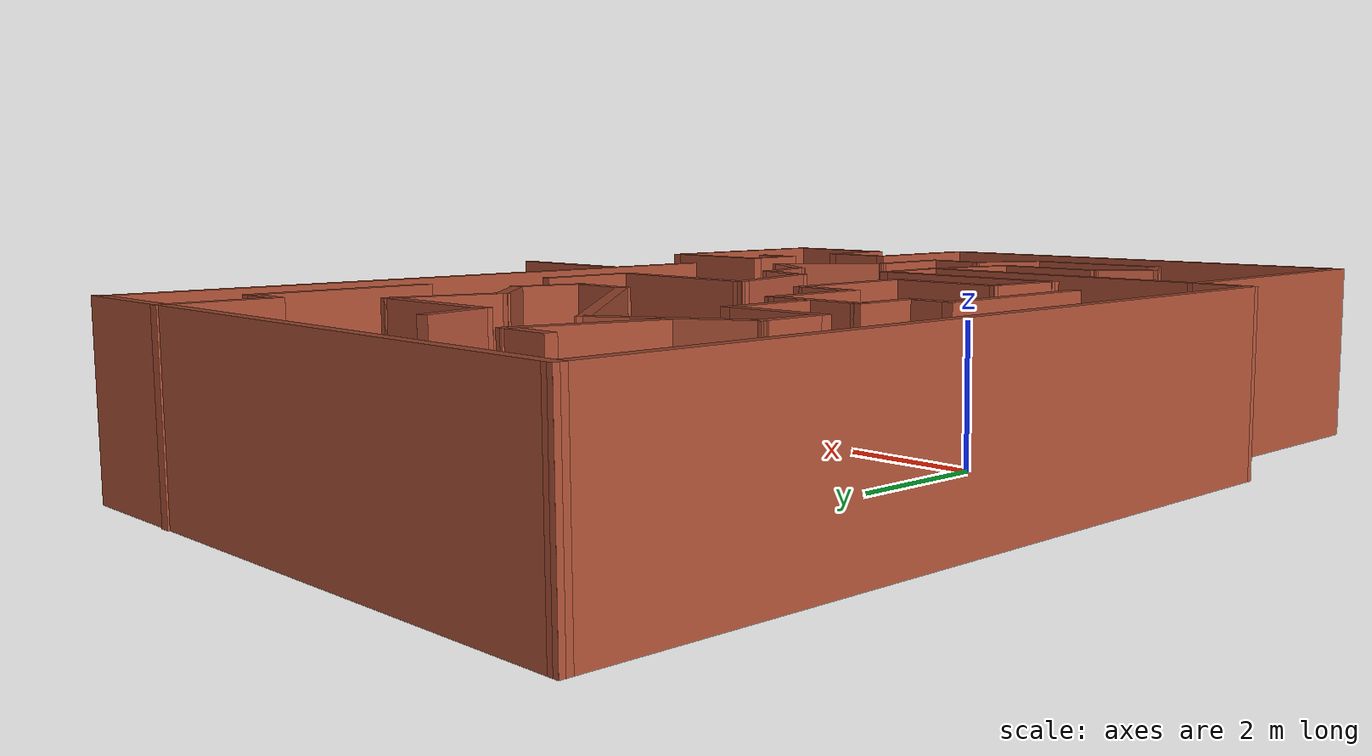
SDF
<?xml version='1.0'?>
<sdf version='1.7'>
  <model name='Search'>
    <pose>2.54923 1.35424 0 0 -0 0</pose>
    <link name='Wall_0'>
      <collision name='Wall_0_Collision'>
        <geometry>
          <box>
            <size>4.25 0.15 2.5</size>
          </box>
        </geometry>
        <pose>0 0 1.25 0 -0 0</pose>
      </collision>
      <visual name='Wall_0_Visual'>
        <pose>0 0 1.25 0 -0 0</pose>
        <geometry>
          <box>
            <size>4.25 0.15 2.5</size>
          </box>
        </geometry>
        <material>
          <script>
            <uri>file://media/materials/scripts/gazebo.material</uri>
            <name>Gazebo/Bricks</name>
          </script>
          <ambient>1 1 1 1</ambient>
        </material>
        <meta>
          <layer>0</layer>
        </meta>
      </visual>
      <pose>-4.64822 -5.4632 0 0 -0 -1.5708</pose>
    </link>
    <link name='Wall_11'>
      <collision name='Wall_11_Collision'>
        <geometry>
          <box>
            <size>2.25 0.15 2.5</size>
          </box>
        </geometry>
        <pose>0 0 1.25 0 -0 0</pose>
      </collision>
      <visual name='Wall_11_Visual'>
        <pose>0 0 1.25 0 -0 0</pose>
        <geometry>
          <box>
            <size>2.25 0.15 2.5</size>
          </box>
        </geometry>
        <material>
          <script>
            <uri>file://media/materials/scripts/gazebo.material</uri>
            <name>Gazebo/Bricks</name>
          </script>
          <ambient>1 1 1 1</ambient>
        </material>
        <meta>
          <layer>0</layer>
        </meta>
      </visual>
      <pose>2.4822 -6.4632 0 0 -0 1.5708</pose>
    </link>
    <link name='Wall_12'>
      <collision name='Wall_12_Collision'>
        <geometry>
          <box>
            <size>1.25 0.15 2.5</size>
          </box>
        </geometry>
        <pose>0 0 1.25 0 -0 0</pose>
      </collision>
      <visual name='Wall_12_Visual'>
        <pose>0 0 1.25 0 -0 0</pose>
        <geometry>
          <box>
            <size>1.25 0.15 2.5</size>
          </box>
        </geometry>
        <material>
          <script>
            <uri>file://media/materials/scripts/gazebo.material</uri>
            <name>Gazebo/Bricks</name>
          </script>
          <ambient>1 1 1 1</ambient>
        </material>
        <meta>
          <layer>0</layer>
        </meta>
      </visual>
      <pose>3.0322 -5.4132 0 0 -0 0</pose>
    </link>
    <link name='Wall_13'>
      <collision name='Wall_13_Collision'>
        <geometry>
          <box>
            <size>1.25 0.15 2.5</size>
          </box>
        </geometry>
        <pose>0 0 1.25 0 -0 0</pose>
      </collision>
      <visual name='Wall_13_Visual'>
        <pose>0 0 1.25 0 -0 0</pose>
        <geometry>
          <box>
            <size>1.25 0.15 2.5</size>
          </box>
        </geometry>
        <material>
          <script>
            <uri>file://media/materials/scripts/gazebo.material</uri>
            <name>Gazebo/Bricks</name>
          </script>
          <ambient>1 1 1 1</ambient>
        </material>
        <meta>
          <layer>0</layer>
        </meta>
      </visual>
      <pose>3.5822 -5.9632 0 0 -0 -1.5708</pose>
    </link>
    <link name='Wall_14'>
      <collision name='Wall_14_Collision'>
        <geometry>
          <box>
            <size>2 0.15 2.5</size>
          </box>
        </geometry>
        <pose>0 0 1.25 0 -0 0</pose>
      </collision>
      <visual name='Wall_14_Visual'>
        <pose>0 0 1.25 0 -0 0</pose>
        <geometry>
          <box>
            <size>2 0.15 2.5</size>
          </box>
        </geometry>
        <material>
          <script>
            <uri>file://media/materials/scripts/gazebo.material</uri>
            <name>Gazebo/Bricks</name>
          </script>
          <ambient>1 1 1 1</ambient>
        </material>
        <meta>
          <layer>0</layer>
        </meta>
      </visual>
      <pose>4.5072 -6.5132 0 0 -0 0</pose>
    </link>
    <link name='Wall_15'>
      <collision name='Wall_15_Collision'>
        <geometry>
          <box>
            <size>3.25 0.15 2.5</size>
          </box>
        </geometry>
        <pose>0 0 1.25 0 -0 0</pose>
      </collision>
      <visual name='Wall_15_Visual'>
        <pose>0 0 1.25 0 -0 0</pose>
        <geometry>
          <box>
            <size>3.25 0.15 2.5</size>
          </box>
        </geometry>
        <material>
          <script>
            <uri>file://media/materials/scripts/gazebo.material</uri>
            <name>Gazebo/Bricks</name>
          </script>
          <ambient>1 1 1 1</ambient>
        </material>
        <meta>
          <layer>0</layer>
        </meta>
      </visual>
      <pose>5.4322 -4.9632 0 0 -0 1.5708</pose>
    </link>
    <link name='Wall_16'>
      <collision name='Wall_16_Collision'>
        <geometry>
          <box>
            <size>2 0.15 2.5</size>
          </box>
        </geometry>
        <pose>0 0 1.25 0 -0 0</pose>
      </collision>
      <visual name='Wall_16_Visual'>
        <pose>0 0 1.25 0 -0 0</pose>
        <geometry>
          <box>
            <size>2 0.15 2.5</size>
          </box>
        </geometry>
        <material>
          <script>
            <uri>file://media/materials/scripts/gazebo.material</uri>
            <name>Gazebo/Bricks</name>
          </script>
          <ambient>1 1 1 1</ambient>
        </material>
        <meta>
          <layer>0</layer>
        </meta>
      </visual>
      <pose>4.5072 -3.4132 0 0 -0 3.14159</pose>
    </link>
    <link name='Wall_17'>
      <collision name='Wall_17_Collision'>
        <geometry>
          <box>
            <size>1 0.15 2.5</size>
          </box>
        </geometry>
        <pose>0 0 1.25 0 -0 0</pose>
      </collision>
      <visual name='Wall_17_Visual'>
        <pose>0 0 1.25 0 -0 0</pose>
        <geometry>
          <box>
            <size>1 0.15 2.5</size>
          </box>
        </geometry>
        <material>
          <script>
            <uri>file://media/materials/scripts/gazebo.material</uri>
            <name>Gazebo/Bricks</name>
          </script>
          <ambient>1 1 1 1</ambient>
        </material>
        <meta>
          <layer>0</layer>
        </meta>
      </visual>
      <pose>3.5822 -3.8382 0 0 -0 -1.5708</pose>
    </link>
    <link name='Wall_18'>
      <collision name='Wall_18_Collision'>
        <geometry>
          <box>
            <size>0.75 0.15 2.5</size>
          </box>
        </geometry>
        <pose>0 0 1.25 0 -0 0</pose>
      </collision>
      <visual name='Wall_18_Visual'>
        <pose>0 0 1.25 0 -0 0</pose>
        <geometry>
          <box>
            <size>0.75 0.15 2.5</size>
          </box>
        </geometry>
        <material>
          <script>
            <uri>file://media/materials/scripts/gazebo.material</uri>
            <name>Gazebo/Bricks</name>
          </script>
          <ambient>1 1 1 1</ambient>
        </material>
        <meta>
          <layer>0</layer>
        </meta>
      </visual>
      <pose>3.8822 -4.2632 0 0 -0 0</pose>
    </link>
    <link name='Wall_23'>
      <collision name='Wall_23_Collision'>
        <geometry>
          <box>
            <size>9.28615 0.15 2.5</size>
          </box>
        </geometry>
        <pose>0 0 1.25 0 -0 0</pose>
      </collision>
      <visual name='Wall_23_Visual'>
        <pose>0 0 1.25 0 -0 0</pose>
        <geometry>
          <box>
            <size>9.28615 0.15 2.5</size>
          </box>
        </geometry>
        <material>
          <script>
            <uri>file://media/materials/scripts/gazebo.material</uri>
            <name>Gazebo/Bricks</name>
          </script>
          <ambient>1 1 1 1</ambient>
        </material>
        <meta>
          <layer>0</layer>
        </meta>
      </visual>
      <pose>3.35084 2.83731 0 0 -0 1.56494</pose>
    </link>
    <link name='Wall_24'>
      <collision name='Wall_24_Collision'>
        <geometry>
          <box>
            <size>9.03663 0.15 2.5</size>
          </box>
        </geometry>
        <pose>0 0 1.25 0 -0 0</pose>
      </collision>
      <visual name='Wall_24_Visual'>
        <pose>0 0 1.25 0 -0 0</pose>
        <geometry>
          <box>
            <size>9.03663 0.15 2.5</size>
          </box>
        </geometry>
        <material>
          <script>
            <uri>file://media/materials/scripts/gazebo.material</uri>
            <name>Gazebo/Bricks</name>
          </script>
          <ambient>1 1 1 1</ambient>
        </material>
        <meta>
          <layer>0</layer>
        </meta>
      </visual>
      <pose>-1.0119 7.4588 0 0 -0 3.12955</pose>
    </link>
    <link name='Wall_25'>
      <collision name='Wall_25_Collision'>
        <geometry>
          <box>
            <size>11 0.15 2.5</size>
          </box>
        </geometry>
        <pose>0 0 1.25 0 -0 0</pose>
      </collision>
      <visual name='Wall_25_Visual'>
        <pose>0 0 1.25 0 -0 0</pose>
        <geometry>
          <box>
            <size>11 0.15 2.5</size>
          </box>
        </geometry>
        <material>
          <script>
            <uri>file://media/materials/scripts/gazebo.material</uri>
            <name>Gazebo/Bricks</name>
          </script>
          <ambient>1 1 1 1</ambient>
        </material>
        <meta>
          <layer>0</layer>
        </meta>
      </visual>
      <pose>-5.45489 2.08731 0 0 -0 -1.5708</pose>
    </link>
    <link name='Wall_26'>
      <collision name='Wall_26_Collision'>
        <geometry>
          <box>
            <size>0.960202 0.15 2.5</size>
          </box>
        </geometry>
        <pose>0 0 1.25 0 -0 0</pose>
      </collision>
      <visual name='Wall_26_Visual'>
        <pose>0 0 1.25 0 -0 0</pose>
        <geometry>
          <box>
            <size>0.960202 0.15 2.5</size>
          </box>
        </geometry>
        <material>
          <script>
            <uri>file://media/materials/scripts/gazebo.material</uri>
            <name>Gazebo/Bricks</name>
          </script>
          <ambient>1 1 1 1</ambient>
        </material>
        <meta>
          <layer>0</layer>
        </meta>
      </visual>
      <pose>-5.05155 -3.37545 0 0 -0 -0.093331</pose>
    </link>
    <link name='Wall_28'>
      <collision name='Wall_28_Collision'>
        <geometry>
          <box>
            <size>2.25 0.15 2.5</size>
          </box>
        </geometry>
        <pose>0 0 1.25 0 -0 0</pose>
      </collision>
      <visual name='Wall_28_Visual'>
        <pose>0 0 1.25 0 -0 0</pose>
        <geometry>
          <box>
            <size>2.25 0.15 2.5</size>
          </box>
        </geometry>
        <material>
          <script>
            <uri>file://media/materials/scripts/gazebo.material</uri>
            <name>Gazebo/Bricks</name>
          </script>
          <ambient>1 1 1 1</ambient>
        </material>
        <meta>
          <layer>0</layer>
        </meta>
      </visual>
      <pose>4.41155 -0.253683 0 0 -0 0</pose>
    </link>
    <link name='Wall_30'>
      <collision name='Wall_30_Collision'>
        <geometry>
          <box>
            <size>2.5 0.15 2.5</size>
          </box>
        </geometry>
        <pose>0 0 1.25 0 -0 0</pose>
      </collision>
      <visual name='Wall_30_Visual'>
        <pose>0 0 1.25 0 -0 0</pose>
        <geometry>
          <box>
            <size>2.5 0.15 2.5</size>
          </box>
        </geometry>
        <material>
          <script>
            <uri>file://media/materials/scripts/gazebo.material</uri>
            <name>Gazebo/Bricks</name>
          </script>
          <ambient>1 1 1 1</ambient>
        </material>
        <meta>
          <layer>0</layer>
        </meta>
      </visual>
      <pose>-4.2358 -0.041728 0 0 -0 1.5708</pose>
    </link>
    <link name='Wall_31'>
      <collision name='Wall_31_Collision'>
        <geometry>
          <box>
            <size>0.75 0.15 2.5</size>
          </box>
        </geometry>
        <pose>0 0 1.25 0 -0 0</pose>
      </collision>
      <visual name='Wall_31_Visual'>
        <pose>0 0 1.25 0 -0 0</pose>
        <geometry>
          <box>
            <size>0.75 0.15 2.5</size>
          </box>
        </geometry>
        <material>
          <script>
            <uri>file://media/materials/scripts/gazebo.material</uri>
            <name>Gazebo/Bricks</name>
          </script>
          <ambient>1 1 1 1</ambient>
        </material>
        <meta>
          <layer>0</layer>
        </meta>
      </visual>
      <pose>-3.9358 1.13327 0 0 -0 0</pose>
    </link>
    <link name='Wall_32'>
      <collision name='Wall_32_Collision'>
        <geometry>
          <box>
            <size>1 0.15 2.5</size>
          </box>
        </geometry>
        <pose>0 0 1.25 0 -0 0</pose>
      </collision>
      <visual name='Wall_32_Visual'>
        <pose>0 0 1.25 0 -0 0</pose>
        <geometry>
          <box>
            <size>1 0.15 2.5</size>
          </box>
        </geometry>
        <material>
          <script>
            <uri>file://media/materials/scripts/gazebo.material</uri>
            <name>Gazebo/Bricks</name>
          </script>
          <ambient>1 1 1 1</ambient>
        </material>
        <meta>
          <layer>0</layer>
        </meta>
      </visual>
      <pose>-3.6358 1.55827 0 0 -0 1.5708</pose>
    </link>
    <link name='Wall_33'>
      <collision name='Wall_33_Collision'>
        <geometry>
          <box>
            <size>1.5 0.15 2.5</size>
          </box>
        </geometry>
        <pose>0 0 1.25 0 -0 0</pose>
      </collision>
      <visual name='Wall_33_Visual'>
        <pose>0 0 1.25 0 -0 0</pose>
        <geometry>
          <box>
            <size>1.5 0.15 2.5</size>
          </box>
        </geometry>
        <material>
          <script>
            <uri>file://media/materials/scripts/gazebo.material</uri>
            <name>Gazebo/Bricks</name>
          </script>
          <ambient>1 1 1 1</ambient>
        </material>
        <meta>
          <layer>0</layer>
        </meta>
      </visual>
      <pose>-2.9608 1.98327 0 0 -0 0</pose>
    </link>
    <link name='Wall_34'>
      <collision name='Wall_34_Collision'>
        <geometry>
          <box>
            <size>1.5 0.15 2.5</size>
          </box>
        </geometry>
        <pose>0 0 1.25 0 -0 0</pose>
      </collision>
      <visual name='Wall_34_Visual'>
        <pose>0 0 1.25 0 -0 0</pose>
        <geometry>
          <box>
            <size>1.5 0.15 2.5</size>
          </box>
        </geometry>
        <material>
          <script>
            <uri>file://media/materials/scripts/gazebo.material</uri>
            <name>Gazebo/Bricks</name>
          </script>
          <ambient>1 1 1 1</ambient>
        </material>
        <meta>
          <layer>0</layer>
        </meta>
      </visual>
      <pose>-2.2858 1.30827 0 0 -0 -1.5708</pose>
    </link>
    <link name='Wall_35'>
      <collision name='Wall_35_Collision'>
        <geometry>
          <box>
            <size>1 0.15 2.5</size>
          </box>
        </geometry>
        <pose>0 0 1.25 0 -0 0</pose>
      </collision>
      <visual name='Wall_35_Visual'>
        <pose>0 0 1.25 0 -0 0</pose>
        <geometry>
          <box>
            <size>1 0.15 2.5</size>
          </box>
        </geometry>
        <material>
          <script>
            <uri>file://media/materials/scripts/gazebo.material</uri>
            <name>Gazebo/Bricks</name>
          </script>
          <ambient>1 1 1 1</ambient>
        </material>
        <meta>
          <layer>0</layer>
        </meta>
      </visual>
      <pose>-1.8608 0.633272 0 0 -0 0</pose>
    </link>
    <link name='Wall_36'>
      <collision name='Wall_36_Collision'>
        <geometry>
          <box>
            <size>2 0.15 2.5</size>
          </box>
        </geometry>
        <pose>0 0 1.25 0 -0 0</pose>
      </collision>
      <visual name='Wall_36_Visual'>
        <pose>0 0 1.25 0 -0 0</pose>
        <geometry>
          <box>
            <size>2 0.15 2.5</size>
          </box>
        </geometry>
        <material>
          <script>
            <uri>file://media/materials/scripts/gazebo.material</uri>
            <name>Gazebo/Bricks</name>
          </script>
          <ambient>1 1 1 1</ambient>
        </material>
        <meta>
          <layer>0</layer>
        </meta>
      </visual>
      <pose>-1.4358 -0.291728 0 0 -0 -1.5708</pose>
    </link>
    <link name='Wall_37'>
      <collision name='Wall_37_Collision'>
        <geometry>
          <box>
            <size>1.75 0.15 2.5</size>
          </box>
        </geometry>
        <pose>0 0 1.25 0 -0 0</pose>
      </collision>
      <visual name='Wall_37_Visual'>
        <pose>0 0 1.25 0 -0 0</pose>
        <geometry>
          <box>
            <size>1.75 0.15 2.5</size>
          </box>
        </geometry>
        <material>
          <script>
            <uri>file://media/materials/scripts/gazebo.material</uri>
            <name>Gazebo/Bricks</name>
          </script>
          <ambient>1 1 1 1</ambient>
        </material>
        <meta>
          <layer>0</layer>
        </meta>
      </visual>
      <pose>-2.2358 -1.21673 0 0 -0 3.14159</pose>
    </link>
    <link name='Wall_38'>
      <collision name='Wall_38_Collision'>
        <geometry>
          <box>
            <size>1.25222 0.15 2.5</size>
          </box>
        </geometry>
        <pose>0 0 1.25 0 -0 0</pose>
      </collision>
      <visual name='Wall_38_Visual'>
        <pose>0 0 1.25 0 -0 0</pose>
        <geometry>
          <box>
            <size>1.25222 0.15 2.5</size>
          </box>
        </geometry>
        <material>
          <script>
            <uri>file://media/materials/scripts/gazebo.material</uri>
            <name>Gazebo/Bricks</name>
          </script>
          <ambient>1 1 1 1</ambient>
        </material>
        <meta>
          <layer>0</layer>
        </meta>
      </visual>
      <pose>-3.09201 -1.76496 0 0 -0 -1.67297</pose>
    </link>
    <link name='Wall_4'>
      <collision name='Wall_4_Collision'>
        <geometry>
          <box>
            <size>7.25 0.15 2.5</size>
          </box>
        </geometry>
        <pose>0 0 1.25 0 -0 0</pose>
      </collision>
      <visual name='Wall_4_Visual'>
        <pose>0 0 1.25 0 -0 0</pose>
        <geometry>
          <box>
            <size>7.25 0.15 2.5</size>
          </box>
        </geometry>
        <material>
          <script>
            <uri>file://media/materials/scripts/gazebo.material</uri>
            <name>Gazebo/Bricks</name>
          </script>
          <ambient>1 1 1 1</ambient>
        </material>
        <meta>
          <layer>0</layer>
        </meta>
      </visual>
      <pose>-1.0678 -7.5132 0 0 -0 0</pose>
    </link>
    <link name='Wall_40'>
      <collision name='Wall_40_Collision'>
        <geometry>
          <box>
            <size>1.25 0.15 2.5</size>
          </box>
        </geometry>
        <pose>0 0 1.25 0 -0 0</pose>
      </collision>
      <visual name='Wall_40_Visual'>
        <pose>0 0 1.25 0 -0 0</pose>
        <geometry>
          <box>
            <size>1.25 0.15 2.5</size>
          </box>
        </geometry>
        <material>
          <script>
            <uri>file://media/materials/scripts/gazebo.material</uri>
            <name>Gazebo/Bricks</name>
          </script>
          <ambient>1 1 1 1</ambient>
        </material>
        <meta>
          <layer>0</layer>
        </meta>
      </visual>
      <pose>-2.89824 2.70393 0 0 -0 1.5708</pose>
    </link>
    <link name='Wall_41'>
      <collision name='Wall_41_Collision'>
        <geometry>
          <box>
            <size>1.5 0.15 2.5</size>
          </box>
        </geometry>
        <pose>0 0 1.25 0 -0 0</pose>
      </collision>
      <visual name='Wall_41_Visual'>
        <pose>0 0 1.25 0 -0 0</pose>
        <geometry>
          <box>
            <size>1.5 0.15 2.5</size>
          </box>
        </geometry>
        <material>
          <script>
            <uri>file://media/materials/scripts/gazebo.material</uri>
            <name>Gazebo/Bricks</name>
          </script>
          <ambient>1 1 1 1</ambient>
        </material>
        <meta>
          <layer>0</layer>
        </meta>
      </visual>
      <pose>-3.57324 3.25393 0 0 -0 3.14159</pose>
    </link>
    <link name='Wall_42'>
      <collision name='Wall_42_Collision'>
        <geometry>
          <box>
            <size>1 0.15 2.5</size>
          </box>
        </geometry>
        <pose>0 0 1.25 0 -0 0</pose>
      </collision>
      <visual name='Wall_42_Visual'>
        <pose>0 0 1.25 0 -0 0</pose>
        <geometry>
          <box>
            <size>1 0.15 2.5</size>
          </box>
        </geometry>
        <material>
          <script>
            <uri>file://media/materials/scripts/gazebo.material</uri>
            <name>Gazebo/Bricks</name>
          </script>
          <ambient>1 1 1 1</ambient>
        </material>
        <meta>
          <layer>0</layer>
        </meta>
      </visual>
      <pose>-4.24824 3.67893 0 0 -0 1.5708</pose>
    </link>
    <link name='Wall_43'>
      <collision name='Wall_43_Collision'>
        <geometry>
          <box>
            <size>2 0.15 2.5</size>
          </box>
        </geometry>
        <pose>0 0 1.25 0 -0 0</pose>
      </collision>
      <visual name='Wall_43_Visual'>
        <pose>0 0 1.25 0 -0 0</pose>
        <geometry>
          <box>
            <size>2 0.15 2.5</size>
          </box>
        </geometry>
        <material>
          <script>
            <uri>file://media/materials/scripts/gazebo.material</uri>
            <name>Gazebo/Bricks</name>
          </script>
          <ambient>1 1 1 1</ambient>
        </material>
        <meta>
          <layer>0</layer>
        </meta>
      </visual>
      <pose>-3.44716 4.56643 0 0 -0 0.523599</pose>
    </link>
    <link name='Wall_44'>
      <collision name='Wall_44_Collision'>
        <geometry>
          <box>
            <size>4 0.15 2.5</size>
          </box>
        </geometry>
        <pose>0 0 1.25 0 -0 0</pose>
      </collision>
      <visual name='Wall_44_Visual'>
        <pose>0 0 1.25 0 -0 0</pose>
        <geometry>
          <box>
            <size>4 0.15 2.5</size>
          </box>
        </geometry>
        <material>
          <script>
            <uri>file://media/materials/scripts/gazebo.material</uri>
            <name>Gazebo/Bricks</name>
          </script>
          <ambient>1 1 1 1</ambient>
        </material>
        <meta>
          <layer>0</layer>
        </meta>
      </visual>
      <pose>-1.28491 3.66775 0 0 -0 -0.785398</pose>
    </link>
    <link name='Wall_45'>
      <collision name='Wall_45_Collision'>
        <geometry>
          <box>
            <size>1 0.15 2.5</size>
          </box>
        </geometry>
        <pose>0 0 1.25 0 -0 0</pose>
      </collision>
      <visual name='Wall_45_Visual'>
        <pose>0 0 1.25 0 -0 0</pose>
        <geometry>
          <box>
            <size>1 0.15 2.5</size>
          </box>
        </geometry>
        <material>
          <script>
            <uri>file://media/materials/scripts/gazebo.material</uri>
            <name>Gazebo/Bricks</name>
          </script>
          <ambient>1 1 1 1</ambient>
        </material>
        <meta>
          <layer>0</layer>
        </meta>
      </visual>
      <pose>0.501271 2.30657 0 0 -0 0</pose>
    </link>
    <link name='Wall_46'>
      <collision name='Wall_46_Collision'>
        <geometry>
          <box>
            <size>1 0.15 2.5</size>
          </box>
        </geometry>
        <pose>0 0 1.25 0 -0 0</pose>
      </collision>
      <visual name='Wall_46_Visual'>
        <pose>0 0 1.25 0 -0 0</pose>
        <geometry>
          <box>
            <size>1 0.15 2.5</size>
          </box>
        </geometry>
        <material>
          <script>
            <uri>file://media/materials/scripts/gazebo.material</uri>
            <name>Gazebo/Bricks</name>
          </script>
          <ambient>1 1 1 1</ambient>
        </material>
        <meta>
          <layer>0</layer>
        </meta>
      </visual>
      <pose>1.03627 2.71709 0 0 -0 1.309</pose>
    </link>
    <link name='Wall_47'>
      <collision name='Wall_47_Collision'>
        <geometry>
          <box>
            <size>1.25 0.15 2.5</size>
          </box>
        </geometry>
        <pose>0 0 1.25 0 -0 0</pose>
      </collision>
      <visual name='Wall_47_Visual'>
        <pose>0 0 1.25 0 -0 0</pose>
        <geometry>
          <box>
            <size>1.25 0.15 2.5</size>
          </box>
        </geometry>
        <material>
          <script>
            <uri>file://media/materials/scripts/gazebo.material</uri>
            <name>Gazebo/Bricks</name>
          </script>
          <ambient>1 1 1 1</ambient>
        </material>
        <meta>
          <layer>0</layer>
        </meta>
      </visual>
      <pose>0.757358 3.51651 0 0 -0 2.35619</pose>
    </link>
    <link name='Wall_48'>
      <collision name='Wall_48_Collision'>
        <geometry>
          <box>
            <size>1.5 0.15 2.5</size>
          </box>
        </geometry>
        <pose>0 0 1.25 0 -0 0</pose>
      </collision>
      <visual name='Wall_48_Visual'>
        <pose>0 0 1.25 0 -0 0</pose>
        <geometry>
          <box>
            <size>1.5 0.15 2.5</size>
          </box>
        </geometry>
        <material>
          <script>
            <uri>file://media/materials/scripts/gazebo.material</uri>
            <name>Gazebo/Bricks</name>
          </script>
          <ambient>1 1 1 1</ambient>
        </material>
        <meta>
          <layer>0</layer>
        </meta>
      </visual>
      <pose>0.543152 4.55742 0 0 -0 1.309</pose>
    </link>
    <link name='Wall_49'>
      <collision name='Wall_49_Collision'>
        <geometry>
          <box>
            <size>2 0.15 2.5</size>
          </box>
        </geometry>
        <pose>0 0 1.25 0 -0 0</pose>
      </collision>
      <visual name='Wall_49_Visual'>
        <pose>0 0 1.25 0 -0 0</pose>
        <geometry>
          <box>
            <size>2 0.15 2.5</size>
          </box>
        </geometry>
        <material>
          <script>
            <uri>file://media/materials/scripts/gazebo.material</uri>
            <name>Gazebo/Bricks</name>
          </script>
          <ambient>1 1 1 1</ambient>
        </material>
        <meta>
          <layer>0</layer>
        </meta>
      </visual>
      <pose>-0.207145 5.20942 0 0 -0 3.14159</pose>
    </link>
    <link name='Wall_50'>
      <collision name='Wall_50_Collision'>
        <geometry>
          <box>
            <size>1 0.15 2.5</size>
          </box>
        </geometry>
        <pose>0 0 1.25 0 -0 0</pose>
      </collision>
      <visual name='Wall_50_Visual'>
        <pose>0 0 1.25 0 -0 0</pose>
        <geometry>
          <box>
            <size>1 0.15 2.5</size>
          </box>
        </geometry>
        <material>
          <script>
            <uri>file://media/materials/scripts/gazebo.material</uri>
            <name>Gazebo/Bricks</name>
          </script>
          <ambient>1 1 1 1</ambient>
        </material>
        <meta>
          <layer>0</layer>
        </meta>
      </visual>
      <pose>-1.24214 5.61994 0 0 -0 1.8326</pose>
    </link>
    <link name='Wall_52'>
      <collision name='Wall_52_Collision'>
        <geometry>
          <box>
            <size>1.75 0.15 2.5</size>
          </box>
        </geometry>
        <pose>0 0 1.25 0 -0 0</pose>
      </collision>
      <visual name='Wall_52_Visual'>
        <pose>0 0 1.25 0 -0 0</pose>
        <geometry>
          <box>
            <size>1.75 0.15 2.5</size>
          </box>
        </geometry>
        <material>
          <script>
            <uri>file://media/materials/scripts/gazebo.material</uri>
            <name>Gazebo/Bricks</name>
          </script>
          <ambient>1 1 1 1</ambient>
        </material>
        <meta>
          <layer>0</layer>
        </meta>
      </visual>
      <pose>-3.27971 5.49479 0 0 -0 1.309</pose>
    </link>
    <link name='Wall_54'>
      <collision name='Wall_54_Collision'>
        <geometry>
          <box>
            <size>0.75 0.15 2.5</size>
          </box>
        </geometry>
        <pose>0 0 1.25 0 -0 0</pose>
      </collision>
      <visual name='Wall_54_Visual'>
        <pose>0 0 1.25 0 -0 0</pose>
        <geometry>
          <box>
            <size>0.75 0.15 2.5</size>
          </box>
        </geometry>
        <material>
          <script>
            <uri>file://media/materials/scripts/gazebo.material</uri>
            <name>Gazebo/Bricks</name>
          </script>
          <ambient>1 1 1 1</ambient>
        </material>
        <meta>
          <layer>0</layer>
        </meta>
      </visual>
      <pose>-3.37265 6.26753 0 0 -0 3.14159</pose>
    </link>
    <link name='Wall_56'>
      <collision name='Wall_56_Collision'>
        <geometry>
          <box>
            <size>1.5 0.15 2.5</size>
          </box>
        </geometry>
        <pose>0 0 1.25 0 -0 0</pose>
      </collision>
      <visual name='Wall_56_Visual'>
        <pose>0 0 1.25 0 -0 0</pose>
        <geometry>
          <box>
            <size>1.5 0.15 2.5</size>
          </box>
        </geometry>
        <material>
          <script>
            <uri>file://media/materials/scripts/gazebo.material</uri>
            <name>Gazebo/Bricks</name>
          </script>
          <ambient>1 1 1 1</ambient>
        </material>
        <meta>
          <layer>0</layer>
        </meta>
      </visual>
      <pose>-0.47292 -4.0652 0 0 -0 -1.8326</pose>
    </link>
    <link name='Wall_57'>
      <collision name='Wall_57_Collision'>
        <geometry>
          <box>
            <size>1.75 0.15 2.5</size>
          </box>
        </geometry>
        <pose>0 0 1.25 0 -0 0</pose>
      </collision>
      <visual name='Wall_57_Visual'>
        <pose>0 0 1.25 0 -0 0</pose>
        <geometry>
          <box>
            <size>1.75 0.15 2.5</size>
          </box>
        </geometry>
        <material>
          <script>
            <uri>file://media/materials/scripts/gazebo.material</uri>
            <name>Gazebo/Bricks</name>
          </script>
          <ambient>1 1 1 1</ambient>
        </material>
        <meta>
          <layer>0</layer>
        </meta>
      </visual>
      <pose>-1.44762 -4.7172 0 0 -0 3.14159</pose>
    </link>
    <link name='Wall_58'>
      <collision name='Wall_58_Collision'>
        <geometry>
          <box>
            <size>1 0.15 2.5</size>
          </box>
        </geometry>
        <pose>0 0 1.25 0 -0 0</pose>
      </collision>
      <visual name='Wall_58_Visual'>
        <pose>0 0 1.25 0 -0 0</pose>
        <geometry>
          <box>
            <size>1 0.15 2.5</size>
          </box>
        </geometry>
        <material>
          <script>
            <uri>file://media/materials/scripts/gazebo.material</uri>
            <name>Gazebo/Bricks</name>
          </script>
          <ambient>1 1 1 1</ambient>
        </material>
        <meta>
          <layer>0</layer>
        </meta>
      </visual>
      <pose>-2.54814 -5.01772 0 0 -0 -2.35619</pose>
    </link>
    <link name='Wall_59'>
      <collision name='Wall_59_Collision'>
        <geometry>
          <box>
            <size>1 0.15 2.5</size>
          </box>
        </geometry>
        <pose>0 0 1.25 0 -0 0</pose>
      </collision>
      <visual name='Wall_59_Visual'>
        <pose>0 0 1.25 0 -0 0</pose>
        <geometry>
          <box>
            <size>1 0.15 2.5</size>
          </box>
        </geometry>
        <material>
          <script>
            <uri>file://media/materials/scripts/gazebo.material</uri>
            <name>Gazebo/Bricks</name>
          </script>
          <ambient>1 1 1 1</ambient>
        </material>
        <meta>
          <layer>0</layer>
        </meta>
      </visual>
      <pose>-2.63616 -5.6863 0 0 -0 -1.0472</pose>
    </link>
    <link name='Wall_60'>
      <collision name='Wall_60_Collision'>
        <geometry>
          <box>
            <size>2.25 0.15 2.5</size>
          </box>
        </geometry>
        <pose>0 0 1.25 0 -0 0</pose>
      </collision>
      <visual name='Wall_60_Visual'>
        <pose>0 0 1.25 0 -0 0</pose>
        <geometry>
          <box>
            <size>2.25 0.15 2.5</size>
          </box>
        </geometry>
        <material>
          <script>
            <uri>file://media/materials/scripts/gazebo.material</uri>
            <name>Gazebo/Bricks</name>
          </script>
          <ambient>1 1 1 1</ambient>
        </material>
        <meta>
          <layer>0</layer>
        </meta>
      </visual>
      <pose>-1.37366 -6.05436 0 0 -0 0</pose>
    </link>
    <link name='Wall_61'>
      <collision name='Wall_61_Collision'>
        <geometry>
          <box>
            <size>1.25 0.15 2.5</size>
          </box>
        </geometry>
        <pose>0 0 1.25 0 -0 0</pose>
      </collision>
      <visual name='Wall_61_Visual'>
        <pose>0 0 1.25 0 -0 0</pose>
        <geometry>
          <box>
            <size>1.25 0.15 2.5</size>
          </box>
        </geometry>
        <material>
          <script>
            <uri>file://media/materials/scripts/gazebo.material</uri>
            <name>Gazebo/Bricks</name>
          </script>
          <ambient>1 1 1 1</ambient>
        </material>
        <meta>
          <layer>0</layer>
        </meta>
      </visual>
      <pose>-0.048663 -5.57805 0 0 -0 1.0472</pose>
    </link>
    <link name='Wall_62'>
      <collision name='Wall_62_Collision'>
        <geometry>
          <box>
            <size>1 0.15 2.5</size>
          </box>
        </geometry>
        <pose>0 0 1.25 0 -0 0</pose>
      </collision>
      <visual name='Wall_62_Visual'>
        <pose>0 0 1.25 0 -0 0</pose>
        <geometry>
          <box>
            <size>1 0.15 2.5</size>
          </box>
        </geometry>
        <material>
          <script>
            <uri>file://media/materials/scripts/gazebo.material</uri>
            <name>Gazebo/Bricks</name>
          </script>
          <ambient>1 1 1 1</ambient>
        </material>
        <meta>
          <layer>0</layer>
        </meta>
      </visual>
      <pose>0.651337 -5.10174 0 0 -0 0</pose>
    </link>
    <link name='Wall_63'>
      <collision name='Wall_63_Collision'>
        <geometry>
          <box>
            <size>1.5 0.15 2.5</size>
          </box>
        </geometry>
        <pose>0 0 1.25 0 -0 0</pose>
      </collision>
      <visual name='Wall_63_Visual'>
        <pose>0 0 1.25 0 -0 0</pose>
        <geometry>
          <box>
            <size>1.5 0.15 2.5</size>
          </box>
        </geometry>
        <material>
          <script>
            <uri>file://media/materials/scripts/gazebo.material</uri>
            <name>Gazebo/Bricks</name>
          </script>
          <ambient>1 1 1 1</ambient>
        </material>
        <meta>
          <layer>0</layer>
        </meta>
      </visual>
      <pose>1.07634 -4.42674 0 0 -0 1.5708</pose>
    </link>
    <link name='Wall_64'>
      <collision name='Wall_64_Collision'>
        <geometry>
          <box>
            <size>1.75 0.15 2.5</size>
          </box>
        </geometry>
        <pose>0 0 1.25 0 -0 0</pose>
      </collision>
      <visual name='Wall_64_Visual'>
        <pose>0 0 1.25 0 -0 0</pose>
        <geometry>
          <box>
            <size>1.75 0.15 2.5</size>
          </box>
        </geometry>
        <material>
          <script>
            <uri>file://media/materials/scripts/gazebo.material</uri>
            <name>Gazebo/Bricks</name>
          </script>
          <ambient>1 1 1 1</ambient>
        </material>
        <meta>
          <layer>0</layer>
        </meta>
      </visual>
      <pose>1.64202 -3.18605 0 0 -0 0.785398</pose>
    </link>
    <link name='Wall_65'>
      <collision name='Wall_65_Collision'>
        <geometry>
          <box>
            <size>1.25 0.15 2.5</size>
          </box>
        </geometry>
        <pose>0 0 1.25 0 -0 0</pose>
      </collision>
      <visual name='Wall_65_Visual'>
        <pose>0 0 1.25 0 -0 0</pose>
        <geometry>
          <box>
            <size>1.25 0.15 2.5</size>
          </box>
        </geometry>
        <material>
          <script>
            <uri>file://media/materials/scripts/gazebo.material</uri>
            <name>Gazebo/Bricks</name>
          </script>
          <ambient>1 1 1 1</ambient>
        </material>
        <meta>
          <layer>0</layer>
        </meta>
      </visual>
      <pose>1.73139 -2.34537 0 0 -0 2.61799</pose>
    </link>
    <link name='Wall_66'>
      <collision name='Wall_66_Collision'>
        <geometry>
          <box>
            <size>1 0.15 2.5</size>
          </box>
        </geometry>
        <pose>0 0 1.25 0 -0 0</pose>
      </collision>
      <visual name='Wall_66_Visual'>
        <pose>0 0 1.25 0 -0 0</pose>
        <geometry>
          <box>
            <size>1 0.15 2.5</size>
          </box>
        </geometry>
        <material>
          <script>
            <uri>file://media/materials/scripts/gazebo.material</uri>
            <name>Gazebo/Bricks</name>
          </script>
          <ambient>1 1 1 1</ambient>
        </material>
        <meta>
          <layer>0</layer>
        </meta>
      </visual>
      <pose>1.14508 -1.65985 0 0 -0 1.8326</pose>
    </link>
    <link name='Wall_67'>
      <collision name='Wall_67_Collision'>
        <geometry>
          <box>
            <size>1 0.15 2.5</size>
          </box>
        </geometry>
        <pose>0 0 1.25 0 -0 0</pose>
      </collision>
      <visual name='Wall_67_Visual'>
        <pose>0 0 1.25 0 -0 0</pose>
        <geometry>
          <box>
            <size>1 0.15 2.5</size>
          </box>
        </geometry>
        <material>
          <script>
            <uri>file://media/materials/scripts/gazebo.material</uri>
            <name>Gazebo/Bricks</name>
          </script>
          <ambient>1 1 1 1</ambient>
        </material>
        <meta>
          <layer>0</layer>
        </meta>
      </visual>
      <pose>0.624565 -1.13933 0 0 -0 2.87979</pose>
    </link>
    <link name='Wall_68'>
      <collision name='Wall_68_Collision'>
        <geometry>
          <box>
            <size>1.75 0.15 2.5</size>
          </box>
        </geometry>
        <pose>0 0 1.25 0 -0 0</pose>
      </collision>
      <visual name='Wall_68_Visual'>
        <pose>0 0 1.25 0 -0 0</pose>
        <geometry>
          <box>
            <size>1.75 0.15 2.5</size>
          </box>
        </geometry>
        <material>
          <script>
            <uri>file://media/materials/scripts/gazebo.material</uri>
            <name>Gazebo/Bricks</name>
          </script>
          <ambient>1 1 1 1</ambient>
        </material>
        <meta>
          <layer>0</layer>
        </meta>
      </visual>
      <pose>0.006991 -0.256592 0 0 -0 1.8326</pose>
    </link>
    <link name='Wall_69'>
      <collision name='Wall_69_Collision'>
        <geometry>
          <box>
            <size>2.5 0.15 2.5</size>
          </box>
        </geometry>
        <pose>0 0 1.25 0 -0 0</pose>
      </collision>
      <visual name='Wall_69_Visual'>
        <pose>0 0 1.25 0 -0 0</pose>
        <geometry>
          <box>
            <size>2.5 0.15 2.5</size>
          </box>
        </geometry>
        <material>
          <script>
            <uri>file://media/materials/scripts/gazebo.material</uri>
            <name>Gazebo/Bricks</name>
          </script>
          <ambient>1 1 1 1</ambient>
        </material>
        <meta>
          <layer>0</layer>
        </meta>
      </visual>
      <pose>0.974936 0.516149 0 0 -0 0</pose>
    </link>
    <link name='Wall_7'>
      <collision name='Wall_7_Collision'>
        <geometry>
          <box>
            <size>4.5 0.15 2.5</size>
          </box>
        </geometry>
        <pose>0 0 1.25 0 -0 0</pose>
      </collision>
      <visual name='Wall_7_Visual'>
        <pose>0 0 1.25 0 -0 0</pose>
        <geometry>
          <box>
            <size>4.5 0.15 2.5</size>
          </box>
        </geometry>
        <material>
          <script>
            <uri>file://media/materials/scripts/gazebo.material</uri>
            <name>Gazebo/Bricks</name>
          </script>
          <ambient>1 1 1 1</ambient>
        </material>
        <meta>
          <layer>0</layer>
        </meta>
      </visual>
      <pose>-2.47322 -3.4132 0 0 -0 0</pose>
    </link>
    <link name='Wall_70'>
      <collision name='Wall_70_Collision'>
        <geometry>
          <box>
            <size>1.5 0.15 2.5</size>
          </box>
        </geometry>
        <pose>0 0 1.25 0 -0 0</pose>
      </collision>
      <visual name='Wall_70_Visual'>
        <pose>0 0 1.25 0 -0 0</pose>
        <geometry>
          <box>
            <size>1.5 0.15 2.5</size>
          </box>
        </geometry>
        <material>
          <script>
            <uri>file://media/materials/scripts/gazebo.material</uri>
            <name>Gazebo/Bricks</name>
          </script>
          <ambient>1 1 1 1</ambient>
        </material>
        <meta>
          <layer>0</layer>
        </meta>
      </visual>
      <pose>2.14994 1.19115 0 0 -0 1.5708</pose>
    </link>
    <link name='Wall_72'>
      <collision name='Wall_72_Collision'>
        <geometry>
          <box>
            <size>1.5 0.15 2.5</size>
          </box>
        </geometry>
        <pose>0 0 1.25 0 -0 0</pose>
      </collision>
      <visual name='Wall_72_Visual'>
        <pose>0 0 1.25 0 -0 0</pose>
        <geometry>
          <box>
            <size>1.5 0.15 2.5</size>
          </box>
        </geometry>
        <material>
          <script>
            <uri>file://media/materials/scripts/gazebo.material</uri>
            <name>Gazebo/Bricks</name>
          </script>
          <ambient>1 1 1 1</ambient>
        </material>
        <meta>
          <layer>0</layer>
        </meta>
      </visual>
      <pose>1.70298 6.77568 0 0 -0 -1.5708</pose>
    </link>
    <link name='Wall_73'>
      <collision name='Wall_73_Collision'>
        <geometry>
          <box>
            <size>0.75 0.15 2.5</size>
          </box>
        </geometry>
        <pose>0 0 1.25 0 -0 0</pose>
      </collision>
      <visual name='Wall_73_Visual'>
        <pose>0 0 1.25 0 -0 0</pose>
        <geometry>
          <box>
            <size>0.75 0.15 2.5</size>
          </box>
        </geometry>
        <material>
          <script>
            <uri>file://media/materials/scripts/gazebo.material</uri>
            <name>Gazebo/Bricks</name>
          </script>
          <ambient>1 1 1 1</ambient>
        </material>
        <meta>
          <layer>0</layer>
        </meta>
      </visual>
      <pose>2.00298 6.10068 0 0 -0 0</pose>
    </link>
    <link name='Wall_74'>
      <collision name='Wall_74_Collision'>
        <geometry>
          <box>
            <size>2.5 0.15 2.5</size>
          </box>
        </geometry>
        <pose>0 0 1.25 0 -0 0</pose>
      </collision>
      <visual name='Wall_74_Visual'>
        <pose>0 0 1.25 0 -0 0</pose>
        <geometry>
          <box>
            <size>2.5 0.15 2.5</size>
          </box>
        </geometry>
        <material>
          <script>
            <uri>file://media/materials/scripts/gazebo.material</uri>
            <name>Gazebo/Bricks</name>
          </script>
          <ambient>1 1 1 1</ambient>
        </material>
        <meta>
          <layer>0</layer>
        </meta>
      </visual>
      <pose>2.30298 4.92568 0 0 -0 -1.5708</pose>
    </link>
    <link name='Wall_8'>
      <collision name='Wall_8_Collision'>
        <geometry>
          <box>
            <size>1.25 0.15 2.5</size>
          </box>
        </geometry>
        <pose>0 0 1.25 0 -0 0</pose>
      </collision>
      <visual name='Wall_8_Visual'>
        <pose>0 0 1.25 0 -0 0</pose>
        <geometry>
          <box>
            <size>1.25 0.15 2.5</size>
          </box>
        </geometry>
        <material>
          <script>
            <uri>file://media/materials/scripts/gazebo.material</uri>
            <name>Gazebo/Bricks</name>
          </script>
          <ambient>1 1 1 1</ambient>
        </material>
        <meta>
          <layer>0</layer>
        </meta>
      </visual>
      <pose>-0.298217 -2.8632 0 0 -0 1.5708</pose>
    </link>
    <link name='Wall_9'>
      <collision name='Wall_9_Collision'>
        <geometry>
          <box>
            <size>3 0.15 2.5</size>
          </box>
        </geometry>
        <pose>0 0 1.25 0 -0 0</pose>
      </collision>
      <visual name='Wall_9_Visual'>
        <pose>0 0 1.25 0 -0 0</pose>
        <geometry>
          <box>
            <size>3 0.15 2.5</size>
          </box>
        </geometry>
        <material>
          <script>
            <uri>file://media/materials/scripts/gazebo.material</uri>
            <name>Gazebo/Bricks</name>
          </script>
          <ambient>1 1 1 1</ambient>
        </material>
        <meta>
          <layer>0</layer>
        </meta>
      </visual>
      <pose>-1.72322 -2.3132 0 0 -0 3.14159</pose>
    </link>
    <static>1</static>
  </model>
</sdf>
